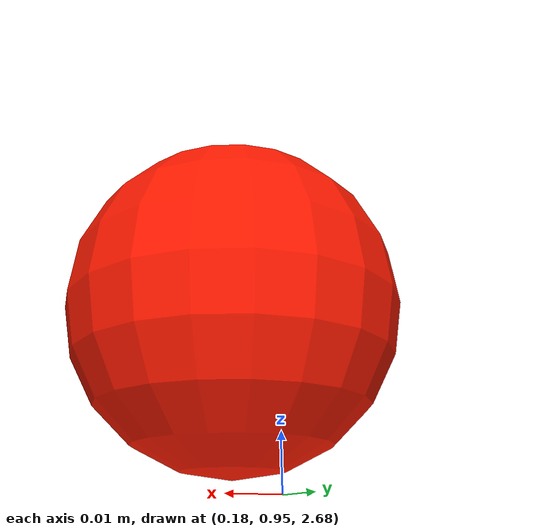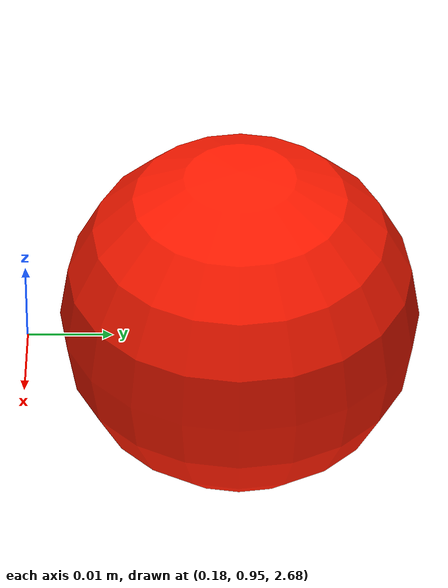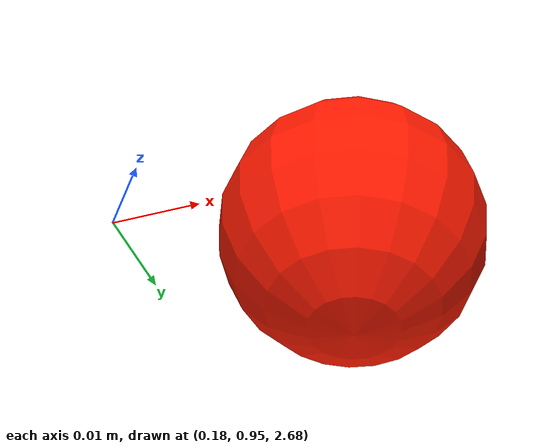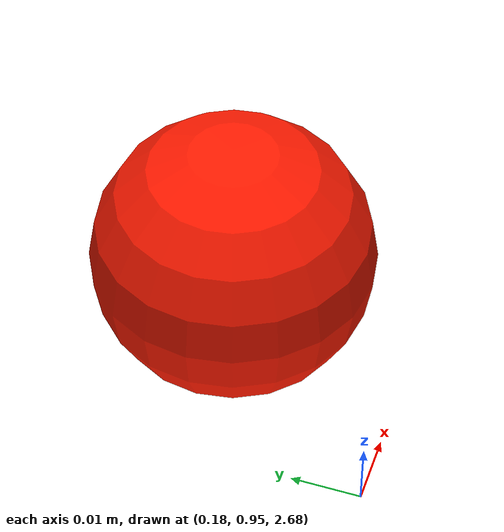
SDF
<?xml version='1.0'?>
<sdf version='1.7'>
  <model name='ball'>
    <link name='link_1'>
      <inertial>
        <mass>0.0027</mass>
        <inertia>
          <ixx>0.00027</ixx>
          <ixy>0</ixy>
          <ixz>0</ixz>
          <iyy>0.00027</iyy>
          <iyz>0</iyz>
          <izz>0.00027</izz>
        </inertia>
        <pose>0 0 2 0 -0 0</pose>
      </inertial>
      <pose>0.2 0.975 0.7 0 -0 0</pose>
      <gravity>1</gravity>
      <self_collide>0</self_collide>
      <kinematic>0</kinematic>
      <enable_wind>0</enable_wind>
      <visual name='visual'>
        <pose>0 0 2 0 -0 0</pose>
        <geometry>
          <sphere>
            <radius>0.02</radius>
          </sphere>
        </geometry>
        <material>
          <lighting>1</lighting>
          <script>
            <uri>file://media/materials/scripts/gazebo.material</uri>
            <name>Gazebo/Grey</name>
          </script>
          <shader type='pixel'>
            <normal_map>__default__</normal_map>
          </shader>
          <ambient>1.0 0.1 0.0 1</ambient>
          <diffuse>1.0 0.1 0.0 1</diffuse>
          <specular>1.0 0.1 0.0 1</specular>
          <emissive>1.0 0.1 0.0 1</emissive>
        </material>
        <transparency>0</transparency>
        <cast_shadows>1</cast_shadows>
      </visual>
      <collision name='collision'>
        <laser_retro>0</laser_retro>
        <max_contacts>10</max_contacts>
        <pose>0 0 2 0 -0 0</pose>
        <geometry>
          <sphere>
            <radius>0.02</radius>
          </sphere>
        </geometry>
        <surface>
          <friction>
            <ode>
              <mu>0.001</mu>
              <mu2>0.001</mu2>
              <fdir1>0 0 0</fdir1>
              <slip1>0</slip1>
              <slip2>0</slip2>
            </ode>
            <torsional>
              <coefficient>1</coefficient>
              <patch_radius>0</patch_radius>
              <surface_radius>0</surface_radius>
              <use_patch_radius>1</use_patch_radius>
              <ode>
                <slip>0</slip>
              </ode>
            </torsional>
          </friction>
          <bounce>
            <restitution_coefficient>0.9</restitution_coefficient>
            <threshold>0.5</threshold>
          </bounce>
          <contact>
            <collide_without_contact>0</collide_without_contact>
            <collide_without_contact_bitmask>1</collide_without_contact_bitmask>
            <collide_bitmask>1</collide_bitmask>
            <ode>
              <soft_cfm>0</soft_cfm>
              <soft_erp>0.2</soft_erp>
              <kp>1e+13</kp>
              <kd>1</kd>
              <max_vel>10</max_vel>
              <min_depth>0</min_depth>
            </ode>
            <bullet>
              <split_impulse>1</split_impulse>
              <split_impulse_penetration_threshold>-0.01</split_impulse_penetration_threshold>
              <soft_cfm>0</soft_cfm>
              <soft_erp>0.2</soft_erp>
              <kp>1e+13</kp>
              <kd>1</kd>
            </bullet>
          </contact>
        </surface>
      </collision>
    </link>
    <static>0</static>
    <allow_auto_disable>1</allow_auto_disable>
  </model>
</sdf>
